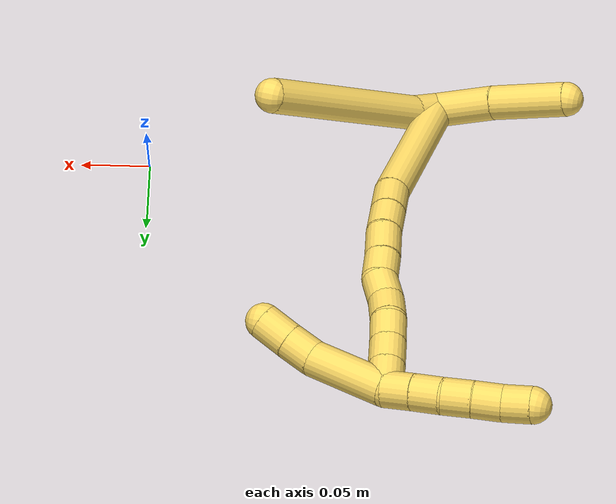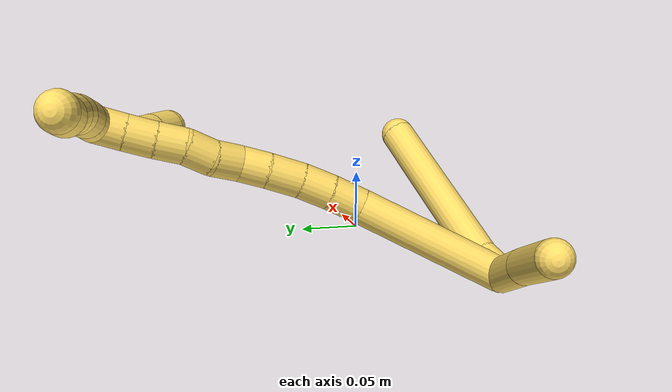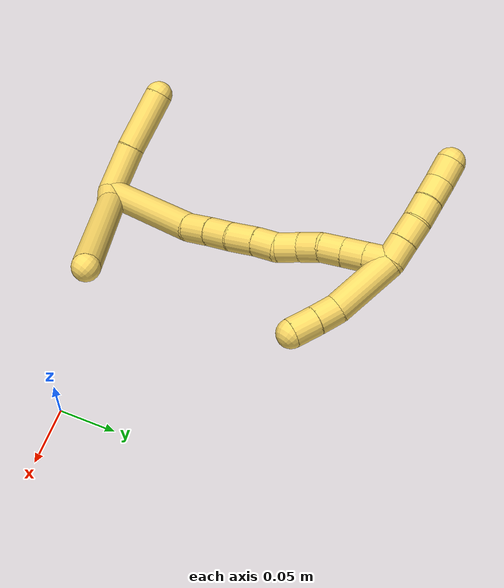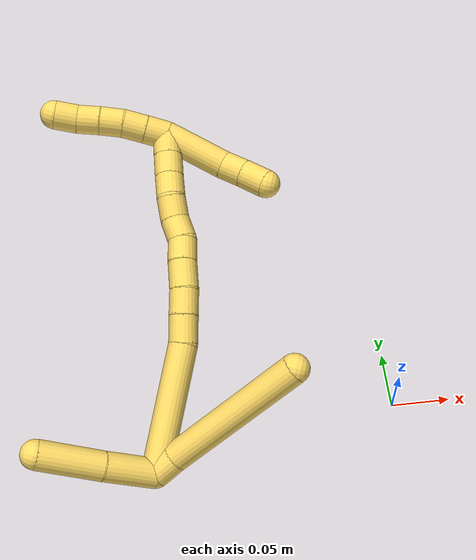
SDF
<sdf version="1.7">
 <world name="default">
  <model name="5">
   <static>0</static>
   <link name="5">
    <collision name="collision-cylinder-e_1_2_8">
     <pose>-0.005464 0.006905 -0.00626 -2.30724 -0.530256 1.09934</pose>
     <geometry><cylinder><radius>0.0125</radius><length>0.021609</length></cylinder></geometry>
     <surface>
      <friction><ode><mu>1.16</mu><mu2>1.16</mu2><slip1>0</slip1><slip2>0</slip2></ode></friction>
      <contact><ode><kp>1e+06</kp><kd>1</kd><max_vel>0</max_vel><min_depth>0.001</min_depth></ode></contact>
     </surface>
    </collision>
    <visual name="visual-cylinder-e_1_2_8">
     <pose>-0.005464 0.006905 -0.00626 -2.30724 -0.530256 1.09934</pose>
     <geometry><cylinder><radius>0.0125</radius><length>0.021609</length></cylinder></geometry>
     <material><ambient>1 0.858824 0.4 1</ambient></material>
    </visual>
    <collision name="collision-cylinder-e_2_8_6">
     <pose>-0.033301 0.060984 -0.049873 -2.24052 -0.355965 0.712072</pose>
     <geometry><cylinder><radius>0.0125</radius><length>0.128391</length></cylinder></geometry>
     <surface>
      <friction><ode><mu>1.16</mu><mu2>1.16</mu2><slip1>0</slip1><slip2>0</slip2></ode></friction>
      <contact><ode><kp>1e+06</kp><kd>1</kd><max_vel>0</max_vel><min_depth>0.001</min_depth></ode></contact>
     </surface>
    </collision>
    <visual name="visual-cylinder-e_2_8_6">
     <pose>-0.033301 0.060984 -0.049873 -2.24052 -0.355965 0.712072</pose>
     <geometry><cylinder><radius>0.0125</radius><length>0.128391</length></cylinder></geometry>
     <material><ambient>1 0.858824 0.4 1</ambient></material>
    </visual>
    <collision name="collision-cylinder-e_1_2_9">
     <pose>0.005161 0.005136 0.021127 -0.238474 0.233074 -0.028049</pose>
     <geometry><cylinder><radius>0.0125</radius><length>0.044692</length></cylinder></geometry>
     <surface>
      <friction><ode><mu>1.16</mu><mu2>1.16</mu2><slip1>0</slip1><slip2>0</slip2></ode></friction>
      <contact><ode><kp>1e+06</kp><kd>1</kd><max_vel>0</max_vel><min_depth>0.001</min_depth></ode></contact>
     </surface>
    </collision>
    <visual name="visual-cylinder-e_1_2_9">
     <pose>0.005161 0.005136 0.021127 -0.238474 0.233074 -0.028049</pose>
     <geometry><cylinder><radius>0.0125</radius><length>0.044692</length></cylinder></geometry>
     <material><ambient>1 0.858824 0.4 1</ambient></material>
    </visual>
    <collision name="collision-cylinder-e_2_9_5">
     <pose>0.015081 0.01548 0.068992 -0.192381 0.172939 -0.016728</pose>
     <geometry><cylinder><radius>0.0125</radius><length>0.055308</length></cylinder></geometry>
     <surface>
      <friction><ode><mu>1.16</mu><mu2>1.16</mu2><slip1>0</slip1><slip2>0</slip2></ode></friction>
      <contact><ode><kp>1e+06</kp><kd>1</kd><max_vel>0</max_vel><min_depth>0.001</min_depth></ode></contact>
     </surface>
    </collision>
    <visual name="visual-cylinder-e_2_9_5">
     <pose>0.015081 0.01548 0.068992 -0.192381 0.172939 -0.016728</pose>
     <geometry><cylinder><radius>0.0125</radius><length>0.055308</length></cylinder></geometry>
     <material><ambient>1 0.858824 0.4 1</ambient></material>
    </visual>
    <collision name="collision-cylinder-e_1_2_10">
     <pose>-0.045438 0.030184 0.001481 -1.52177 -0.983889 0.943612</pose>
     <geometry><cylinder><radius>0.0125</radius><length>0.10914</length></cylinder></geometry>
     <surface>
      <friction><ode><mu>1.16</mu><mu2>1.16</mu2><slip1>0</slip1><slip2>0</slip2></ode></friction>
      <contact><ode><kp>1e+06</kp><kd>1</kd><max_vel>0</max_vel><min_depth>0.001</min_depth></ode></contact>
     </surface>
    </collision>
    <visual name="visual-cylinder-e_1_2_10">
     <pose>-0.045438 0.030184 0.001481 -1.52177 -0.983889 0.943612</pose>
     <geometry><cylinder><radius>0.0125</radius><length>0.10914</length></cylinder></geometry>
     <material><ambient>1 0.858824 0.4 1</ambient></material>
    </visual>
    <collision name="collision-cylinder-e_2_10_11">
     <pose>-0.100744 0.066696 0.005618 -1.1735 -0.963062 0.668761</pose>
     <geometry><cylinder><radius>0.0125</radius><length>0.024039</length></cylinder></geometry>
     <surface>
      <friction><ode><mu>1.16</mu><mu2>1.16</mu2><slip1>0</slip1><slip2>0</slip2></ode></friction>
      <contact><ode><kp>1e+06</kp><kd>1</kd><max_vel>0</max_vel><min_depth>0.001</min_depth></ode></contact>
     </surface>
    </collision>
    <visual name="visual-cylinder-e_2_10_11">
     <pose>-0.100744 0.066696 0.005618 -1.1735 -0.963062 0.668761</pose>
     <geometry><cylinder><radius>0.0125</radius><length>0.024039</length></cylinder></geometry>
     <material><ambient>1 0.858824 0.4 1</ambient></material>
    </visual>
    <collision name="collision-cylinder-e_3_11_12">
     <pose>-0.120047 0.07843 0.010611 -1.16262 -1.01284 0.698966</pose>
     <geometry><cylinder><radius>0.0125</radius><length>0.022245</length></cylinder></geometry>
     <surface>
      <friction><ode><mu>1.16</mu><mu2>1.16</mu2><slip1>0</slip1><slip2>0</slip2></ode></friction>
      <contact><ode><kp>1e+06</kp><kd>1</kd><max_vel>0</max_vel><min_depth>0.001</min_depth></ode></contact>
     </surface>
    </collision>
    <visual name="visual-cylinder-e_3_11_12">
     <pose>-0.120047 0.07843 0.010611 -1.16262 -1.01284 0.698966</pose>
     <geometry><cylinder><radius>0.0125</radius><length>0.022245</length></cylinder></geometry>
     <material><ambient>1 0.858824 0.4 1</ambient></material>
    </visual>
    <collision name="collision-cylinder-e_4_12_13">
     <pose>-0.140081 0.088709 0.016524 -0.937842 -1.05249 0.572406</pose>
     <geometry><cylinder><radius>0.0125</radius><length>0.024402</length></cylinder></geometry>
     <surface>
      <friction><ode><mu>1.16</mu><mu2>1.16</mu2><slip1>0</slip1><slip2>0</slip2></ode></friction>
      <contact><ode><kp>1e+06</kp><kd>1</kd><max_vel>0</max_vel><min_depth>0.001</min_depth></ode></contact>
     </surface>
    </collision>
    <visual name="visual-cylinder-e_4_12_13">
     <pose>-0.140081 0.088709 0.016524 -0.937842 -1.05249 0.572406</pose>
     <geometry><cylinder><radius>0.0125</radius><length>0.024402</length></cylinder></geometry>
     <material><ambient>1 0.858824 0.4 1</ambient></material>
    </visual>
    <collision name="collision-cylinder-e_5_13_14">
     <pose>-0.159721 0.097285 0.022397 -1.01539 -1.12171 0.672379</pose>
     <geometry><cylinder><radius>0.0125</radius><length>0.020074</length></cylinder></geometry>
     <surface>
      <friction><ode><mu>1.16</mu><mu2>1.16</mu2><slip1>0</slip1><slip2>0</slip2></ode></friction>
      <contact><ode><kp>1e+06</kp><kd>1</kd><max_vel>0</max_vel><min_depth>0.001</min_depth></ode></contact>
     </surface>
    </collision>
    <visual name="visual-cylinder-e_5_13_14">
     <pose>-0.159721 0.097285 0.022397 -1.01539 -1.12171 0.672379</pose>
     <geometry><cylinder><radius>0.0125</radius><length>0.020074</length></cylinder></geometry>
     <material><ambient>1 0.858824 0.4 1</ambient></material>
    </visual>
    <collision name="collision-cylinder-e_6_14_15">
     <pose>-0.176757 0.103893 0.029997 -0.501352 -0.92321 0.253391</pose>
     <geometry><cylinder><radius>0.0125</radius><length>0.020046</length></cylinder></geometry>
     <surface>
      <friction><ode><mu>1.16</mu><mu2>1.16</mu2><slip1>0</slip1><slip2>0</slip2></ode></friction>
      <contact><ode><kp>1e+06</kp><kd>1</kd><max_vel>0</max_vel><min_depth>0.001</min_depth></ode></contact>
     </surface>
    </collision>
    <visual name="visual-cylinder-e_6_14_15">
     <pose>-0.176757 0.103893 0.029997 -0.501352 -0.92321 0.253391</pose>
     <geometry><cylinder><radius>0.0125</radius><length>0.020046</length></cylinder></geometry>
     <material><ambient>1 0.858824 0.4 1</ambient></material>
    </visual>
    <collision name="collision-cylinder-e_7_15_16">
     <pose>-0.192504 0.111718 0.039274 -0.891047 -0.886597 0.445953</pose>
     <geometry><cylinder><radius>0.0125</radius><length>0.020011</length></cylinder></geometry>
     <surface>
      <friction><ode><mu>1.16</mu><mu2>1.16</mu2><slip1>0</slip1><slip2>0</slip2></ode></friction>
      <contact><ode><kp>1e+06</kp><kd>1</kd><max_vel>0</max_vel><min_depth>0.001</min_depth></ode></contact>
     </surface>
    </collision>
    <visual name="visual-cylinder-e_7_15_16">
     <pose>-0.192504 0.111718 0.039274 -0.891047 -0.886597 0.445953</pose>
     <geometry><cylinder><radius>0.0125</radius><length>0.020011</length></cylinder></geometry>
     <material><ambient>1 0.858824 0.4 1</ambient></material>
    </visual>
    <collision name="collision-cylinder-e_8_16_17">
     <pose>-0.209233 0.119868 0.046314 -0.812064 -1.11017 0.521086</pose>
     <geometry><cylinder><radius>0.0125</radius><length>0.02004</length></cylinder></geometry>
     <surface>
      <friction><ode><mu>1.16</mu><mu2>1.16</mu2><slip1>0</slip1><slip2>0</slip2></ode></friction>
      <contact><ode><kp>1e+06</kp><kd>1</kd><max_vel>0</max_vel><min_depth>0.001</min_depth></ode></contact>
     </surface>
    </collision>
    <visual name="visual-cylinder-e_8_16_17">
     <pose>-0.209233 0.119868 0.046314 -0.812064 -1.11017 0.521086</pose>
     <geometry><cylinder><radius>0.0125</radius><length>0.02004</length></cylinder></geometry>
     <material><ambient>1 0.858824 0.4 1</ambient></material>
    </visual>
    <collision name="collision-cylinder-e_9_17_18">
     <pose>-0.227084 0.126723 0.052227 -0.904254 -1.09192 0.573876</pose>
     <geometry><cylinder><radius>0.0125</radius><length>0.020001</length></cylinder></geometry>
     <surface>
      <friction><ode><mu>1.16</mu><mu2>1.16</mu2><slip1>0</slip1><slip2>0</slip2></ode></friction>
      <contact><ode><kp>1e+06</kp><kd>1</kd><max_vel>0</max_vel><min_depth>0.001</min_depth></ode></contact>
     </surface>
    </collision>
    <visual name="visual-cylinder-e_9_17_18">
     <pose>-0.227084 0.126723 0.052227 -0.904254 -1.09192 0.573876</pose>
     <geometry><cylinder><radius>0.0125</radius><length>0.020001</length></cylinder></geometry>
     <material><ambient>1 0.858824 0.4 1</ambient></material>
    </visual>
    <collision name="collision-cylinder-e_10_18_1">
     <pose>-0.244789 0.134163 0.057812 -0.949107 -1.0819 0.598644</pose>
     <geometry><cylinder><radius>0.0125</radius><length>0.020002</length></cylinder></geometry>
     <surface>
      <friction><ode><mu>1.16</mu><mu2>1.16</mu2><slip1>0</slip1><slip2>0</slip2></ode></friction>
      <contact><ode><kp>1e+06</kp><kd>1</kd><max_vel>0</max_vel><min_depth>0.001</min_depth></ode></contact>
     </surface>
    </collision>
    <visual name="visual-cylinder-e_10_18_1">
     <pose>-0.244789 0.134163 0.057812 -0.949107 -1.0819 0.598644</pose>
     <geometry><cylinder><radius>0.0125</radius><length>0.020002</length></cylinder></geometry>
     <material><ambient>1 0.858824 0.4 1</ambient></material>
    </visual>
    <collision name="collision-cylinder-e_1_1_19">
     <pose>-0.252869 0.139156 0.07045 -0.118089 0.075079 -0.00444</pose>
     <geometry><cylinder><radius>0.0125</radius><length>0.02</length></cylinder></geometry>
     <surface>
      <friction><ode><mu>1.16</mu><mu2>1.16</mu2><slip1>0</slip1><slip2>0</slip2></ode></friction>
      <contact><ode><kp>1e+06</kp><kd>1</kd><max_vel>0</max_vel><min_depth>0.001</min_depth></ode></contact>
     </surface>
    </collision>
    <visual name="visual-cylinder-e_1_1_19">
     <pose>-0.252869 0.139156 0.07045 -0.118089 0.075079 -0.00444</pose>
     <geometry><cylinder><radius>0.0125</radius><length>0.02</length></cylinder></geometry>
     <material><ambient>1 0.858824 0.4 1</ambient></material>
    </visual>
    <collision name="collision-cylinder-e_2_19_20">
     <pose>-0.251452 0.141201 0.090292 -0.08736 0.066708 -0.002917</pose>
     <geometry><cylinder><radius>0.0125</radius><length>0.02</length></cylinder></geometry>
     <surface>
      <friction><ode><mu>1.16</mu><mu2>1.16</mu2><slip1>0</slip1><slip2>0</slip2></ode></friction>
      <contact><ode><kp>1e+06</kp><kd>1</kd><max_vel>0</max_vel><min_depth>0.001</min_depth></ode></contact>
     </surface>
    </collision>
    <visual name="visual-cylinder-e_2_19_20">
     <pose>-0.251452 0.141201 0.090292 -0.08736 0.066708 -0.002917</pose>
     <geometry><cylinder><radius>0.0125</radius><length>0.02</length></cylinder></geometry>
     <material><ambient>1 0.858824 0.4 1</ambient></material>
    </visual>
    <collision name="collision-cylinder-e_3_20_21">
     <pose>-0.249451 0.141599 0.110131 0.047713 0.133784 0.003197</pose>
     <geometry><cylinder><radius>0.0125</radius><length>0.02</length></cylinder></geometry>
     <surface>
      <friction><ode><mu>1.16</mu><mu2>1.16</mu2><slip1>0</slip1><slip2>0</slip2></ode></friction>
      <contact><ode><kp>1e+06</kp><kd>1</kd><max_vel>0</max_vel><min_depth>0.001</min_depth></ode></contact>
     </surface>
    </collision>
    <visual name="visual-cylinder-e_3_20_21">
     <pose>-0.249451 0.141599 0.110131 0.047713 0.133784 0.003197</pose>
     <geometry><cylinder><radius>0.0125</radius><length>0.02</length></cylinder></geometry>
     <material><ambient>1 0.858824 0.4 1</ambient></material>
    </visual>
    <collision name="collision-cylinder-e_4_21_22">
     <pose>-0.246818 0.140012 0.129883 0.11264 0.130372 0.007361</pose>
     <geometry><cylinder><radius>0.0125</radius><length>0.02</length></cylinder></geometry>
     <surface>
      <friction><ode><mu>1.16</mu><mu2>1.16</mu2><slip1>0</slip1><slip2>0</slip2></ode></friction>
      <contact><ode><kp>1e+06</kp><kd>1</kd><max_vel>0</max_vel><min_depth>0.001</min_depth></ode></contact>
     </surface>
    </collision>
    <visual name="visual-cylinder-e_4_21_22">
     <pose>-0.246818 0.140012 0.129883 0.11264 0.130372 0.007361</pose>
     <geometry><cylinder><radius>0.0125</radius><length>0.02</length></cylinder></geometry>
     <material><ambient>1 0.858824 0.4 1</ambient></material>
    </visual>
    <collision name="collision-cylinder-e_5_22_4">
     <pose>-0.24404 0.139493 0.149607 -0.060324 0.148336 -0.004484</pose>
     <geometry><cylinder><radius>0.0125</radius><length>0.02</length></cylinder></geometry>
     <surface>
      <friction><ode><mu>1.16</mu><mu2>1.16</mu2><slip1>0</slip1><slip2>0</slip2></ode></friction>
      <contact><ode><kp>1e+06</kp><kd>1</kd><max_vel>0</max_vel><min_depth>0.001</min_depth></ode></contact>
     </surface>
    </collision>
    <visual name="visual-cylinder-e_5_22_4">
     <pose>-0.24404 0.139493 0.149607 -0.060324 0.148336 -0.004484</pose>
     <geometry><cylinder><radius>0.0125</radius><length>0.02</length></cylinder></geometry>
     <material><ambient>1 0.858824 0.4 1</ambient></material>
    </visual>
    <collision name="collision-cylinder-e_1_1_23">
     <pose>-0.24785 0.134079 0.033038 3.0007 0.204719 1.93777</pose>
     <geometry><cylinder><radius>0.0125</radius><length>0.056755</length></cylinder></geometry>
     <surface>
      <friction><ode><mu>1.16</mu><mu2>1.16</mu2><slip1>0</slip1><slip2>0</slip2></ode></friction>
      <contact><ode><kp>1e+06</kp><kd>1</kd><max_vel>0</max_vel><min_depth>0.001</min_depth></ode></contact>
     </surface>
    </collision>
    <visual name="visual-cylinder-e_1_1_23">
     <pose>-0.24785 0.134079 0.033038 3.0007 0.204719 1.93777</pose>
     <geometry><cylinder><radius>0.0125</radius><length>0.056755</length></cylinder></geometry>
     <material><ambient>1 0.858824 0.4 1</ambient></material>
    </visual>
    <collision name="collision-cylinder-e_2_23_24">
     <pose>-0.238395 0.131402 -0.004076 -3.01472 0.363713 -2.47638</pose>
     <geometry><cylinder><radius>0.0125</radius><length>0.020719</length></cylinder></geometry>
     <surface>
      <friction><ode><mu>1.16</mu><mu2>1.16</mu2><slip1>0</slip1><slip2>0</slip2></ode></friction>
      <contact><ode><kp>1e+06</kp><kd>1</kd><max_vel>0</max_vel><min_depth>0.001</min_depth></ode></contact>
     </surface>
    </collision>
    <visual name="visual-cylinder-e_2_23_24">
     <pose>-0.238395 0.131402 -0.004076 -3.01472 0.363713 -2.47638</pose>
     <geometry><cylinder><radius>0.0125</radius><length>0.020719</length></cylinder></geometry>
     <material><ambient>1 0.858824 0.4 1</ambient></material>
    </visual>
    <collision name="collision-cylinder-e_3_24_3">
     <pose>-0.230307 0.133842 -0.023975 -3.02419 0.401621 -2.57946</pose>
     <geometry><cylinder><radius>0.0125</radius><length>0.022526</length></cylinder></geometry>
     <surface>
      <friction><ode><mu>1.16</mu><mu2>1.16</mu2><slip1>0</slip1><slip2>0</slip2></ode></friction>
      <contact><ode><kp>1e+06</kp><kd>1</kd><max_vel>0</max_vel><min_depth>0.001</min_depth></ode></contact>
     </surface>
    </collision>
    <visual name="visual-cylinder-e_3_24_3">
     <pose>-0.230307 0.133842 -0.023975 -3.02419 0.401621 -2.57946</pose>
     <geometry><cylinder><radius>0.0125</radius><length>0.022526</length></cylinder></geometry>
     <material><ambient>1 0.858824 0.4 1</ambient></material>
    </visual>
    <collision name="collision-sphere-3">
     <pose>-0.225904 0.135056 -0.03427 0 -0 0</pose>
     <geometry><sphere><radius>0.0125</radius></sphere></geometry>
     <surface>
      <friction><ode><mu>1.16</mu><mu2>1.16</mu2><slip1>0</slip1><slip2>0</slip2></ode></friction>
      <contact><ode><kp>1e+06</kp><kd>1</kd><max_vel>0</max_vel><min_depth>0.001</min_depth></ode></contact>
     </surface>
    </collision>
    <visual name="visual-sphere-3">
     <pose>-0.225904 0.135056 -0.03427 0 -0 0</pose>
     <geometry><sphere><radius>0.0125</radius></sphere></geometry>
     <material><ambient>1 0.858824 0.4 1</ambient></material>
    </visual>
    <collision name="collision-sphere-24">
     <pose>-0.23471 0.132628 -0.01368 0 -0 0</pose>
     <geometry><sphere><radius>0.0125</radius></sphere></geometry>
     <surface>
      <friction><ode><mu>1.16</mu><mu2>1.16</mu2><slip1>0</slip1><slip2>0</slip2></ode></friction>
      <contact><ode><kp>1e+06</kp><kd>1</kd><max_vel>0</max_vel><min_depth>0.001</min_depth></ode></contact>
     </surface>
    </collision>
    <visual name="visual-sphere-24">
     <pose>-0.23471 0.132628 -0.01368 0 -0 0</pose>
     <geometry><sphere><radius>0.0125</radius></sphere></geometry>
     <material><ambient>1 0.858824 0.4 1</ambient></material>
    </visual>
    <collision name="collision-sphere-23">
     <pose>-0.242081 0.130177 0.005528 0 -0 0</pose>
     <geometry><sphere><radius>0.0125</radius></sphere></geometry>
     <surface>
      <friction><ode><mu>1.16</mu><mu2>1.16</mu2><slip1>0</slip1><slip2>0</slip2></ode></friction>
      <contact><ode><kp>1e+06</kp><kd>1</kd><max_vel>0</max_vel><min_depth>0.001</min_depth></ode></contact>
     </surface>
    </collision>
    <visual name="visual-sphere-23">
     <pose>-0.242081 0.130177 0.005528 0 -0 0</pose>
     <geometry><sphere><radius>0.0125</radius></sphere></geometry>
     <material><ambient>1 0.858824 0.4 1</ambient></material>
    </visual>
    <collision name="collision-sphere-4">
     <pose>-0.242562 0.14009 0.159479 0 -0 0</pose>
     <geometry><sphere><radius>0.0125</radius></sphere></geometry>
     <surface>
      <friction><ode><mu>1.16</mu><mu2>1.16</mu2><slip1>0</slip1><slip2>0</slip2></ode></friction>
      <contact><ode><kp>1e+06</kp><kd>1</kd><max_vel>0</max_vel><min_depth>0.001</min_depth></ode></contact>
     </surface>
    </collision>
    <visual name="visual-sphere-4">
     <pose>-0.242562 0.14009 0.159479 0 -0 0</pose>
     <geometry><sphere><radius>0.0125</radius></sphere></geometry>
     <material><ambient>1 0.858824 0.4 1</ambient></material>
    </visual>
    <collision name="collision-sphere-22">
     <pose>-0.245517 0.138897 0.139735 0 -0 0</pose>
     <geometry><sphere><radius>0.0125</radius></sphere></geometry>
     <surface>
      <friction><ode><mu>1.16</mu><mu2>1.16</mu2><slip1>0</slip1><slip2>0</slip2></ode></friction>
      <contact><ode><kp>1e+06</kp><kd>1</kd><max_vel>0</max_vel><min_depth>0.001</min_depth></ode></contact>
     </surface>
    </collision>
    <visual name="visual-sphere-22">
     <pose>-0.245517 0.138897 0.139735 0 -0 0</pose>
     <geometry><sphere><radius>0.0125</radius></sphere></geometry>
     <material><ambient>1 0.858824 0.4 1</ambient></material>
    </visual>
    <collision name="collision-sphere-21">
     <pose>-0.248118 0.141126 0.12003 0 -0 0</pose>
     <geometry><sphere><radius>0.0125</radius></sphere></geometry>
     <surface>
      <friction><ode><mu>1.16</mu><mu2>1.16</mu2><slip1>0</slip1><slip2>0</slip2></ode></friction>
      <contact><ode><kp>1e+06</kp><kd>1</kd><max_vel>0</max_vel><min_depth>0.001</min_depth></ode></contact>
     </surface>
    </collision>
    <visual name="visual-sphere-21">
     <pose>-0.248118 0.141126 0.12003 0 -0 0</pose>
     <geometry><sphere><radius>0.0125</radius></sphere></geometry>
     <material><ambient>1 0.858824 0.4 1</ambient></material>
    </visual>
    <collision name="collision-sphere-20">
     <pose>-0.250785 0.142072 0.100232 0 -0 0</pose>
     <geometry><sphere><radius>0.0125</radius></sphere></geometry>
     <surface>
      <friction><ode><mu>1.16</mu><mu2>1.16</mu2><slip1>0</slip1><slip2>0</slip2></ode></friction>
      <contact><ode><kp>1e+06</kp><kd>1</kd><max_vel>0</max_vel><min_depth>0.001</min_depth></ode></contact>
     </surface>
    </collision>
    <visual name="visual-sphere-20">
     <pose>-0.250785 0.142072 0.100232 0 -0 0</pose>
     <geometry><sphere><radius>0.0125</radius></sphere></geometry>
     <material><ambient>1 0.858824 0.4 1</ambient></material>
    </visual>
    <collision name="collision-sphere-10">
     <pose>-0.090876 0.060368 0.002962 0 -0 0</pose>
     <geometry><sphere><radius>0.0125</radius></sphere></geometry>
     <surface>
      <friction><ode><mu>1.16</mu><mu2>1.16</mu2><slip1>0</slip1><slip2>0</slip2></ode></friction>
      <contact><ode><kp>1e+06</kp><kd>1</kd><max_vel>0</max_vel><min_depth>0.001</min_depth></ode></contact>
     </surface>
    </collision>
    <visual name="visual-sphere-10">
     <pose>-0.090876 0.060368 0.002962 0 -0 0</pose>
     <geometry><sphere><radius>0.0125</radius></sphere></geometry>
     <material><ambient>1 0.858824 0.4 1</ambient></material>
    </visual>
    <collision name="collision-sphere-5">
     <pose>0.01984 0.020689 0.095731 0 -0 0</pose>
     <geometry><sphere><radius>0.0125</radius></sphere></geometry>
     <surface>
      <friction><ode><mu>1.16</mu><mu2>1.16</mu2><slip1>0</slip1><slip2>0</slip2></ode></friction>
      <contact><ode><kp>1e+06</kp><kd>1</kd><max_vel>0</max_vel><min_depth>0.001</min_depth></ode></contact>
     </surface>
    </collision>
    <visual name="visual-sphere-5">
     <pose>0.01984 0.020689 0.095731 0 -0 0</pose>
     <geometry><sphere><radius>0.0125</radius></sphere></geometry>
     <material><ambient>1 0.858824 0.4 1</ambient></material>
    </visual>
    <collision name="collision-sphere-6">
     <pose>-0.055672 0.108158 -0.087226 0 -0 0</pose>
     <geometry><sphere><radius>0.0125</radius></sphere></geometry>
     <surface>
      <friction><ode><mu>1.16</mu><mu2>1.16</mu2><slip1>0</slip1><slip2>0</slip2></ode></friction>
      <contact><ode><kp>1e+06</kp><kd>1</kd><max_vel>0</max_vel><min_depth>0.001</min_depth></ode></contact>
     </surface>
    </collision>
    <visual name="visual-sphere-6">
     <pose>-0.055672 0.108158 -0.087226 0 -0 0</pose>
     <geometry><sphere><radius>0.0125</radius></sphere></geometry>
     <material><ambient>1 0.858824 0.4 1</ambient></material>
    </visual>
    <collision name="collision-sphere-9">
     <pose>0.010323 0.010272 0.042253 0 -0 0</pose>
     <geometry><sphere><radius>0.0125</radius></sphere></geometry>
     <surface>
      <friction><ode><mu>1.16</mu><mu2>1.16</mu2><slip1>0</slip1><slip2>0</slip2></ode></friction>
      <contact><ode><kp>1e+06</kp><kd>1</kd><max_vel>0</max_vel><min_depth>0.001</min_depth></ode></contact>
     </surface>
    </collision>
    <visual name="visual-sphere-9">
     <pose>0.010323 0.010272 0.042253 0 -0 0</pose>
     <geometry><sphere><radius>0.0125</radius></sphere></geometry>
     <material><ambient>1 0.858824 0.4 1</ambient></material>
    </visual>
    <collision name="collision-sphere-2">
     <geometry><sphere><radius>0.0125</radius></sphere></geometry>
     <surface>
      <friction><ode><mu>1.16</mu><mu2>1.16</mu2><slip1>0</slip1><slip2>0</slip2></ode></friction>
      <contact><ode><kp>1e+06</kp><kd>1</kd><max_vel>0</max_vel><min_depth>0.001</min_depth></ode></contact>
     </surface>
    </collision>
    <visual name="visual-sphere-2">
     <geometry><sphere><radius>0.0125</radius></sphere></geometry>
     <material><ambient>1 0.858824 0.4 1</ambient></material>
    </visual>
    <collision name="collision-sphere-19">
     <pose>-0.252118 0.14033 0.080352 0 -0 0</pose>
     <geometry><sphere><radius>0.0125</radius></sphere></geometry>
     <surface>
      <friction><ode><mu>1.16</mu><mu2>1.16</mu2><slip1>0</slip1><slip2>0</slip2></ode></friction>
      <contact><ode><kp>1e+06</kp><kd>1</kd><max_vel>0</max_vel><min_depth>0.001</min_depth></ode></contact>
     </surface>
    </collision>
    <visual name="visual-sphere-19">
     <pose>-0.252118 0.14033 0.080352 0 -0 0</pose>
     <geometry><sphere><radius>0.0125</radius></sphere></geometry>
     <material><ambient>1 0.858824 0.4 1</ambient></material>
    </visual>
    <collision name="collision-sphere-8">
     <pose>-0.010929 0.013811 -0.012521 0 -0 0</pose>
     <geometry><sphere><radius>0.0125</radius></sphere></geometry>
     <surface>
      <friction><ode><mu>1.16</mu><mu2>1.16</mu2><slip1>0</slip1><slip2>0</slip2></ode></friction>
      <contact><ode><kp>1e+06</kp><kd>1</kd><max_vel>0</max_vel><min_depth>0.001</min_depth></ode></contact>
     </surface>
    </collision>
    <visual name="visual-sphere-8">
     <pose>-0.010929 0.013811 -0.012521 0 -0 0</pose>
     <geometry><sphere><radius>0.0125</radius></sphere></geometry>
     <material><ambient>1 0.858824 0.4 1</ambient></material>
    </visual>
    <collision name="collision-sphere-11">
     <pose>-0.110611 0.073025 0.008273 0 -0 0</pose>
     <geometry><sphere><radius>0.0125</radius></sphere></geometry>
     <surface>
      <friction><ode><mu>1.16</mu><mu2>1.16</mu2><slip1>0</slip1><slip2>0</slip2></ode></friction>
      <contact><ode><kp>1e+06</kp><kd>1</kd><max_vel>0</max_vel><min_depth>0.001</min_depth></ode></contact>
     </surface>
    </collision>
    <visual name="visual-sphere-11">
     <pose>-0.110611 0.073025 0.008273 0 -0 0</pose>
     <geometry><sphere><radius>0.0125</radius></sphere></geometry>
     <material><ambient>1 0.858824 0.4 1</ambient></material>
    </visual>
    <collision name="collision-sphere-12">
     <pose>-0.129483 0.083835 0.012948 0 -0 0</pose>
     <geometry><sphere><radius>0.0125</radius></sphere></geometry>
     <surface>
      <friction><ode><mu>1.16</mu><mu2>1.16</mu2><slip1>0</slip1><slip2>0</slip2></ode></friction>
      <contact><ode><kp>1e+06</kp><kd>1</kd><max_vel>0</max_vel><min_depth>0.001</min_depth></ode></contact>
     </surface>
    </collision>
    <visual name="visual-sphere-12">
     <pose>-0.129483 0.083835 0.012948 0 -0 0</pose>
     <geometry><sphere><radius>0.0125</radius></sphere></geometry>
     <material><ambient>1 0.858824 0.4 1</ambient></material>
    </visual>
    <collision name="collision-sphere-13">
     <pose>-0.15068 0.093583 0.020099 0 -0 0</pose>
     <geometry><sphere><radius>0.0125</radius></sphere></geometry>
     <surface>
      <friction><ode><mu>1.16</mu><mu2>1.16</mu2><slip1>0</slip1><slip2>0</slip2></ode></friction>
      <contact><ode><kp>1e+06</kp><kd>1</kd><max_vel>0</max_vel><min_depth>0.001</min_depth></ode></contact>
     </surface>
    </collision>
    <visual name="visual-sphere-13">
     <pose>-0.15068 0.093583 0.020099 0 -0 0</pose>
     <geometry><sphere><radius>0.0125</radius></sphere></geometry>
     <material><ambient>1 0.858824 0.4 1</ambient></material>
    </visual>
    <collision name="collision-sphere-14">
     <pose>-0.168763 0.100987 0.024694 0 -0 0</pose>
     <geometry><sphere><radius>0.0125</radius></sphere></geometry>
     <surface>
      <friction><ode><mu>1.16</mu><mu2>1.16</mu2><slip1>0</slip1><slip2>0</slip2></ode></friction>
      <contact><ode><kp>1e+06</kp><kd>1</kd><max_vel>0</max_vel><min_depth>0.001</min_depth></ode></contact>
     </surface>
    </collision>
    <visual name="visual-sphere-14">
     <pose>-0.168763 0.100987 0.024694 0 -0 0</pose>
     <geometry><sphere><radius>0.0125</radius></sphere></geometry>
     <material><ambient>1 0.858824 0.4 1</ambient></material>
    </visual>
    <collision name="collision-sphere-15">
     <pose>-0.18475 0.106799 0.035299 0 -0 0</pose>
     <geometry><sphere><radius>0.0125</radius></sphere></geometry>
     <surface>
      <friction><ode><mu>1.16</mu><mu2>1.16</mu2><slip1>0</slip1><slip2>0</slip2></ode></friction>
      <contact><ode><kp>1e+06</kp><kd>1</kd><max_vel>0</max_vel><min_depth>0.001</min_depth></ode></contact>
     </surface>
    </collision>
    <visual name="visual-sphere-15">
     <pose>-0.18475 0.106799 0.035299 0 -0 0</pose>
     <geometry><sphere><radius>0.0125</radius></sphere></geometry>
     <material><ambient>1 0.858824 0.4 1</ambient></material>
    </visual>
    <collision name="collision-sphere-16">
     <pose>-0.200257 0.116636 0.04325 0 -0 0</pose>
     <geometry><sphere><radius>0.0125</radius></sphere></geometry>
     <surface>
      <friction><ode><mu>1.16</mu><mu2>1.16</mu2><slip1>0</slip1><slip2>0</slip2></ode></friction>
      <contact><ode><kp>1e+06</kp><kd>1</kd><max_vel>0</max_vel><min_depth>0.001</min_depth></ode></contact>
     </surface>
    </collision>
    <visual name="visual-sphere-16">
     <pose>-0.200257 0.116636 0.04325 0 -0 0</pose>
     <geometry><sphere><radius>0.0125</radius></sphere></geometry>
     <material><ambient>1 0.858824 0.4 1</ambient></material>
    </visual>
    <collision name="collision-sphere-17">
     <pose>-0.218208 0.123101 0.049378 0 -0 0</pose>
     <geometry><sphere><radius>0.0125</radius></sphere></geometry>
     <surface>
      <friction><ode><mu>1.16</mu><mu2>1.16</mu2><slip1>0</slip1><slip2>0</slip2></ode></friction>
      <contact><ode><kp>1e+06</kp><kd>1</kd><max_vel>0</max_vel><min_depth>0.001</min_depth></ode></contact>
     </surface>
    </collision>
    <visual name="visual-sphere-17">
     <pose>-0.218208 0.123101 0.049378 0 -0 0</pose>
     <geometry><sphere><radius>0.0125</radius></sphere></geometry>
     <material><ambient>1 0.858824 0.4 1</ambient></material>
    </visual>
    <collision name="collision-sphere-18">
     <pose>-0.23596 0.130344 0.055076 0 -0 0</pose>
     <geometry><sphere><radius>0.0125</radius></sphere></geometry>
     <surface>
      <friction><ode><mu>1.16</mu><mu2>1.16</mu2><slip1>0</slip1><slip2>0</slip2></ode></friction>
      <contact><ode><kp>1e+06</kp><kd>1</kd><max_vel>0</max_vel><min_depth>0.001</min_depth></ode></contact>
     </surface>
    </collision>
    <visual name="visual-sphere-18">
     <pose>-0.23596 0.130344 0.055076 0 -0 0</pose>
     <geometry><sphere><radius>0.0125</radius></sphere></geometry>
     <material><ambient>1 0.858824 0.4 1</ambient></material>
    </visual>
    <collision name="collision-sphere-1">
     <pose>-0.253619 0.137981 0.060548 0 -0 0</pose>
     <geometry><sphere><radius>0.0125</radius></sphere></geometry>
     <surface>
      <friction><ode><mu>1.16</mu><mu2>1.16</mu2><slip1>0</slip1><slip2>0</slip2></ode></friction>
      <contact><ode><kp>1e+06</kp><kd>1</kd><max_vel>0</max_vel><min_depth>0.001</min_depth></ode></contact>
     </surface>
    </collision>
    <visual name="visual-sphere-1">
     <pose>-0.253619 0.137981 0.060548 0 -0 0</pose>
     <geometry><sphere><radius>0.0125</radius></sphere></geometry>
     <material><ambient>1 0.858824 0.4 1</ambient></material>
    </visual>
    <inertial>
     <pose>-0.120157 0.078853 0.021841 0 -0 0</pose>
     <mass>0.75</mass>
     <inertia><ixx>0.000357</ixx><ixy>0</ixy><ixz>0</ixz><iyy>0.000282</iyy><iyz>0</iyz><izz>-4e-05</izz></inertia>
    </inertial>
   </link>
   <pose>-0.208493 -0.04626 0.012563 1.40931 -0.137604 -1.83596</pose>
  </model>
 </world>
</sdf>
